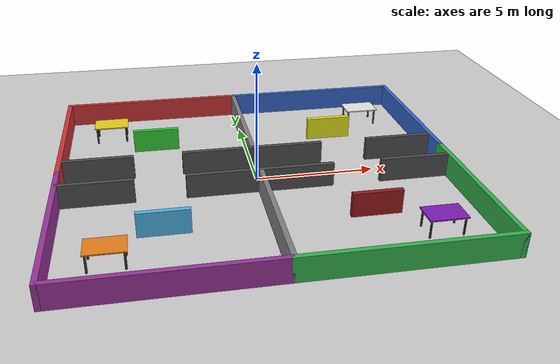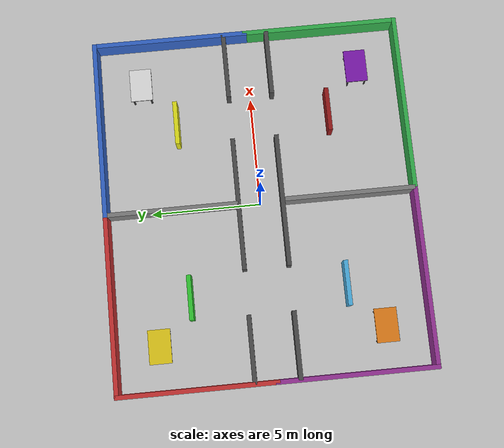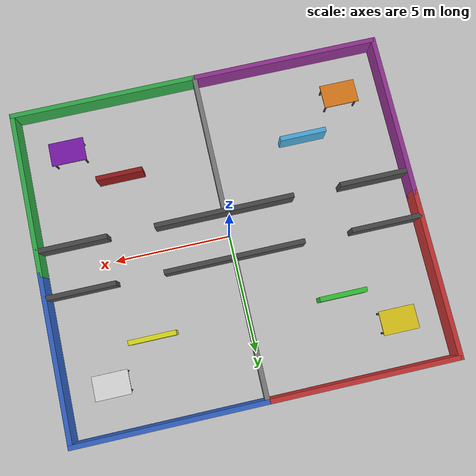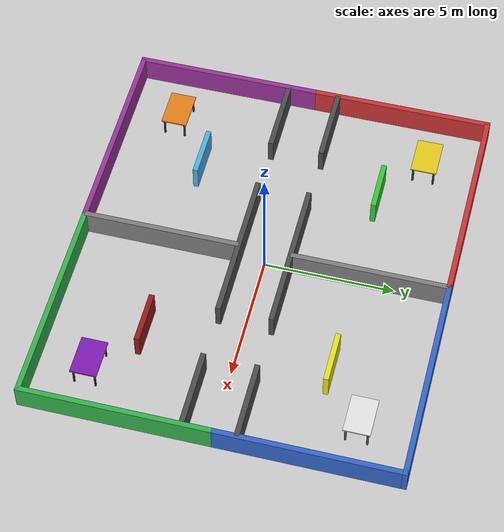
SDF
<?xml version='1.0' encoding='utf-8'?>
<sdf version='1.9'>
  <world name='hallway_colorful_rooms_world'>

    <physics name='1ms' type='ignored'>
      <max_step_size>0.001</max_step_size>
      <real_time_factor>1</real_time_factor>
      <real_time_update_rate>1000</real_time_update_rate>
    </physics>
    <plugin name='gz::sim::systems::Physics' filename='ignition-gazebo-physics-system'/>
    <plugin name='gz::sim::systems::UserCommands' filename='ignition-gazebo-user-commands-system'/>
    <plugin name='gz::sim::systems::SceneBroadcaster' filename='ignition-gazebo-scene-broadcaster-system'/>
    <plugin name='gz::sim::systems::Contact' filename='ignition-gazebo-contact-system'/>
    <gravity>0 0 -9.8</gravity>
    <magnetic_field>6e-06 2.3e-05 -4.2e-05</magnetic_field>
    <atmosphere type='adiabatic'/>

    <scene>
      <ambient>0.5 0.5 0.5 1</ambient>
      <background>0.8 0.8 0.8 1</background>
      <shadows>true</shadows>
    </scene>

    <light name='sun' type='directional'>
      <pose>0 0 10 0 0 0</pose>
      <cast_shadows>true</cast_shadows>
      <intensity>1</intensity>
      <direction>-0.5 0.1 -0.9</direction>
      <diffuse>0.9 0.9 0.9 1</diffuse>
      <specular>0.2 0.2 0.2 1</specular>
      <attenuation>
        <range>1000</range>
        <linear>0.01</linear>
        <constant>0.9</constant>
        <quadratic>0.001</quadratic>
      </attenuation>
    </light>

    <model name='ground_plane'>
      <static>true</static>
      <link name='link'>
        <collision name='collision'><geometry><plane><normal>0 0 1</normal><size>100 100</size></plane></geometry></collision>
        <visual name='visual'>
          <geometry><plane><normal>0 0 1</normal><size>100 100</size></plane></geometry>
          <material>
            <ambient>0.8 0.8 0.8 1</ambient>
            <diffuse>0.8 0.8 0.8 1</diffuse>
          </material>
        </visual>
      </link>
    </model>

    <model name='building_layout'>
      <static>true</static>
      <pose>0 0 0 0 0 0</pose>
      <link name='walls'>

        <collision name='wall_n_ext_c1'><pose>-4 7 0.5 0 0 0</pose><geometry><box><size>8 0.2 1</size></box></geometry></collision>
        <visual name='wall_n_ext_c1_vis'><pose>-4 7 0.5 0 0 0</pose><geometry><box><size>8 0.2 1</size></box></geometry><material><ambient>0.8 0.2 0.2 1</ambient><diffuse>0.8 0.2 0.2 1</diffuse></material></visual>

        <collision name='wall_n_ext_c2'><pose>4 7 0.5 0 0 0</pose><geometry><box><size>8.2 0.2 1</size></box></geometry></collision>
        <visual name='wall_n_ext_c2_vis'><pose>4 7 0.5 0 0 0</pose><geometry><box><size>8.2 0.2 1</size></box></geometry><material><ambient>0.2 0.4 0.8 1</ambient><diffuse>0.2 0.4 0.8 1</diffuse></material></visual>

        <collision name='wall_s_ext_c3'><pose>-4 -7 0.5 0 0 0</pose><geometry><box><size>8 0.2 1</size></box></geometry></collision>
        <visual name='wall_s_ext_c3_vis'><pose>-4 -7 0.5 0 0 0</pose><geometry><box><size>8 0.2 1</size></box></geometry><material><ambient>0.6 0.2 0.6 1</ambient><diffuse>0.6 0.2 0.6 1</diffuse></material></visual>

        <collision name='wall_s_ext_c4'><pose>4 -7 0.5 0 0 0</pose><geometry><box><size>8.2 0.2 1</size></box></geometry></collision>
        <visual name='wall_s_ext_c4_vis'><pose>4 -7 0.5 0 0 0</pose><geometry><box><size>8.2 0.2 1</size></box></geometry><material><ambient>0.2 0.7 0.3 1</ambient><diffuse>0.2 0.7 0.3 1</diffuse></material></visual>

        <collision name='wall_w_ext_top'><pose>-8 3.5 0.5 0 0 0</pose><geometry><box><size>0.2 7.2 1</size></box></geometry></collision>
        <visual name='wall_w_ext_top_vis'><pose>-8 3.5 0.5 0 0 0</pose><geometry><box><size>0.2 7.2 1</size></box></geometry><material><ambient>0.8 0.2 0.2 1</ambient><diffuse>0.8 0.2 0.2 1</diffuse></material></visual>

        <collision name='wall_w_ext_bot'><pose>-8 -3.5 0.5 0 0 0</pose><geometry><box><size>0.2 7.2 1</size></box></geometry></collision>
        <visual name='wall_w_ext_bot_vis'><pose>-8 -3.5 0.5 0 0 0</pose><geometry><box><size>0.2 7.2 1</size></box></geometry><material><ambient>0.6 0.2 0.6 1</ambient><diffuse>0.6 0.2 0.6 1</diffuse></material></visual>

        <collision name='wall_e_ext_top'><pose>8 3.5 0.5 0 0 0</pose><geometry><box><size>0.2 7.2 1</size></box></geometry></collision>
        <visual name='wall_e_ext_top_vis'><pose>8 3.5 0.5 0 0 0</pose><geometry><box><size>0.2 7.2 1</size></box></geometry><material><ambient>0.2 0.4 0.8 1</ambient><diffuse>0.2 0.4 0.8 1</diffuse></material></visual>

        <collision name='wall_e_ext_bot'><pose>8 -3.5 0.5 0 0 0</pose><geometry><box><size>0.2 7.2 1</size></box></geometry></collision>
        <visual name='wall_e_ext_bot_vis'><pose>8 -3.5 0.5 0 0 0</pose><geometry><box><size>0.2 7.2 1</size></box></geometry><material><ambient>0.2 0.7 0.3 1</ambient><diffuse>0.2 0.7 0.3 1</diffuse></material></visual>

        <collision name='wall_div_n'><pose>0 4 0.5 0 0 0</pose><geometry><box><size>0.2 6 1</size></box></geometry></collision>
        <visual name='wall_div_n_vis'><pose>0 4 0.5 0 0 0</pose><geometry><box><size>0.2 6 1</size></box></geometry><material><ambient>0.5 0.5 0.5 1</ambient><diffuse>0.5 0.5 0.5 1</diffuse></material></visual>

        <collision name='wall_div_s'><pose>0 -4 0.5 0 0 0</pose><geometry><box><size>0.2 6 1</size></box></geometry></collision>
        <visual name='wall_div_s_vis'><pose>0 -4 0.5 0 0 0</pose><geometry><box><size>0.2 6 1</size></box></geometry><material><ambient>0.5 0.5 0.5 1</ambient><diffuse>0.5 0.5 0.5 1</diffuse></material></visual>

        <collision name='hall_n1'><pose>-6.5 1 0.5 0 0 0</pose><geometry><box><size>3 0.2 1</size></box></geometry></collision>
        <visual name='hall_n1_vis'><pose>-6.5 1 0.5 0 0 0</pose><geometry><box><size>3 0.2 1</size></box></geometry><material><ambient>0.3 0.3 0.3 1</ambient></material></visual>

        <collision name='hall_n2'><pose>0 1 0.5 0 0 0</pose><geometry><box><size>6 0.2 1</size></box></geometry></collision>
        <visual name='hall_n2_vis'><pose>0 1 0.5 0 0 0</pose><geometry><box><size>6 0.2 1</size></box></geometry><material><ambient>0.3 0.3 0.3 1</ambient></material></visual>

        <collision name='hall_n3'><pose>6.5 1 0.5 0 0 0</pose><geometry><box><size>3 0.2 1</size></box></geometry></collision>
        <visual name='hall_n3_vis'><pose>6.5 1 0.5 0 0 0</pose><geometry><box><size>3 0.2 1</size></box></geometry><material><ambient>0.3 0.3 0.3 1</ambient></material></visual>

        <collision name='hall_s1'><pose>-6.5 -1 0.5 0 0 0</pose><geometry><box><size>3 0.2 1</size></box></geometry></collision>
        <visual name='hall_s1_vis'><pose>-6.5 -1 0.5 0 0 0</pose><geometry><box><size>3 0.2 1</size></box></geometry><material><ambient>0.3 0.3 0.3 1</ambient></material></visual>

        <collision name='hall_s2'><pose>0 -1 0.5 0 0 0</pose><geometry><box><size>6 0.2 1</size></box></geometry></collision>
        <visual name='hall_s2_vis'><pose>0 -1 0.5 0 0 0</pose><geometry><box><size>6 0.2 1</size></box></geometry><material><ambient>0.3 0.3 0.3 1</ambient></material></visual>

        <collision name='hall_s3'><pose>6.5 -1 0.5 0 0 0</pose><geometry><box><size>3 0.2 1</size></box></geometry></collision>
        <visual name='hall_s3_vis'><pose>6.5 -1 0.5 0 0 0</pose><geometry><box><size>3 0.2 1</size></box></geometry><material><ambient>0.3 0.3 0.3 1</ambient></material></visual>

        <collision name='obs_1'><pose>-4 3.5 0.5 0 0 0</pose><geometry><box><size>2 0.2 1</size></box></geometry></collision>
        <visual name='obs_1_vis'><pose>-4 3.5 0.5 0 0 0</pose><geometry><box><size>2 0.2 1</size></box></geometry><material><ambient>0.2 0.8 0.2 1</ambient></material></visual>

        <collision name='obs_2'><pose>4 3.5 0.5 0 0 0</pose><geometry><box><size>2 0.2 1</size></box></geometry></collision>
        <visual name='obs_2_vis'><pose>4 3.5 0.5 0 0 0</pose><geometry><box><size>2 0.2 1</size></box></geometry><material><ambient>0.9 0.9 0.1 1</ambient></material></visual>

        <collision name='obs_3'><pose>-4 -3.5 0.5 0 0 0</pose><geometry><box><size>2 0.2 1</size></box></geometry></collision>
        <visual name='obs_3_vis'><pose>-4 -3.5 0.5 0 0 0</pose><geometry><box><size>2 0.2 1</size></box></geometry><material><ambient>0.3 0.7 0.9 1</ambient></material></visual>

        <collision name='obs_4'><pose>4 -3.5 0.5 0 0 0</pose><geometry><box><size>2 0.2 1</size></box></geometry></collision>
        <visual name='obs_4_vis'><pose>4 -3.5 0.5 0 0 0</pose><geometry><box><size>2 0.2 1</size></box></geometry><material><ambient>0.6 0.1 0.1 1</ambient></material></visual>

      </link>
    </model>

    <model name='table_1'>
      <static>true</static><pose>-6 5 0 0 0 0</pose>
      <link name='table_parts'>
        <collision name='top'><pose>0 0 0.75 0 0 0</pose><geometry><box><size>1.5 1.0 0.05</size></box></geometry></collision>
        <visual name='top'><pose>0 0 0.75 0 0 0</pose><geometry><box><size>1.5 1.0 0.05</size></box></geometry><material><ambient>0.9 0.8 0.1 1</ambient></material></visual>
        <visual name='l1'><pose>0.65 0.4 0.375 0 0 0</pose><geometry><cylinder><radius>0.04</radius><length>0.75</length></cylinder></geometry><material><ambient>0.2 0.2 0.2 1</ambient></material></visual>
        <visual name='l2'><pose>-0.65 0.4 0.375 0 0 0</pose><geometry><cylinder><radius>0.04</radius><length>0.75</length></cylinder></geometry><material><ambient>0.2 0.2 0.2 1</ambient></material></visual>
        <visual name='l3'><pose>0.65 -0.4 0.375 0 0 0</pose><geometry><cylinder><radius>0.04</radius><length>0.75</length></cylinder></geometry><material><ambient>0.2 0.2 0.2 1</ambient></material></visual>
        <visual name='l4'><pose>-0.65 -0.4 0.375 0 0 0</pose><geometry><cylinder><radius>0.04</radius><length>0.75</length></cylinder></geometry><material><ambient>0.2 0.2 0.2 1</ambient></material></visual>
      </link>
    </model>

    <model name='table_2'>
      <static>true</static><pose>6 5 0 0 0 0</pose>
      <link name='table_parts'>
        <collision name='top'><pose>0 0 0.75 0 0 0</pose><geometry><box><size>1.5 1.0 0.05</size></box></geometry></collision>
        <visual name='top'><pose>0 0 0.75 0 0 0</pose><geometry><box><size>1.5 1.0 0.05</size></box></geometry><material><ambient>0.9 0.9 0.9 1</ambient></material></visual>
        <visual name='l1'><pose>0.65 0.4 0.375 0 0 0</pose><geometry><cylinder><radius>0.04</radius><length>0.75</length></cylinder></geometry><material><ambient>0.3 0.3 0.3 1</ambient></material></visual>
        <visual name='l2'><pose>-0.65 0.4 0.375 0 0 0</pose><geometry><cylinder><radius>0.04</radius><length>0.75</length></cylinder></geometry><material><ambient>0.3 0.3 0.3 1</ambient></material></visual>
        <visual name='l3'><pose>0.65 -0.4 0.375 0 0 0</pose><geometry><cylinder><radius>0.04</radius><length>0.75</length></cylinder></geometry><material><ambient>0.3 0.3 0.3 1</ambient></material></visual>
        <visual name='l4'><pose>-0.65 -0.4 0.375 0 0 0</pose><geometry><cylinder><radius>0.04</radius><length>0.75</length></cylinder></geometry><material><ambient>0.3 0.3 0.3 1</ambient></material></visual>
      </link>
    </model>

    <model name='table_3'>
      <static>true</static><pose>-6 -5 0 0 0 0</pose>
      <link name='table_parts'>
        <collision name='top'><pose>0 0 0.75 0 0 0</pose><geometry><box><size>1.5 1.0 0.05</size></box></geometry></collision>
        <visual name='top'><pose>0 0 0.75 0 0 0</pose><geometry><box><size>1.5 1.0 0.05</size></box></geometry><material><ambient>0.9 0.5 0.1 1</ambient></material></visual>
        <visual name='l1'><pose>0.65 0.4 0.375 0 0 0</pose><geometry><cylinder><radius>0.04</radius><length>0.75</length></cylinder></geometry><material><ambient>0.2 0.2 0.2 1</ambient></material></visual>
        <visual name='l2'><pose>-0.65 0.4 0.375 0 0 0</pose><geometry><cylinder><radius>0.04</radius><length>0.75</length></cylinder></geometry><material><ambient>0.2 0.2 0.2 1</ambient></material></visual>
        <visual name='l3'><pose>0.65 -0.4 0.375 0 0 0</pose><geometry><cylinder><radius>0.04</radius><length>0.75</length></cylinder></geometry><material><ambient>0.2 0.2 0.2 1</ambient></material></visual>
        <visual name='l4'><pose>-0.65 -0.4 0.375 0 0 0</pose><geometry><cylinder><radius>0.04</radius><length>0.75</length></cylinder></geometry><material><ambient>0.2 0.2 0.2 1</ambient></material></visual>
      </link>
    </model>

    <model name='table_4'>
      <static>true</static><pose>6 -5 0 0 0 0</pose>
      <link name='table_parts'>
        <collision name='top'><pose>0 0 0.75 0 0 0</pose><geometry><box><size>1.5 1.0 0.05</size></box></geometry></collision>
        <visual name='top'><pose>0 0 0.75 0 0 0</pose><geometry><box><size>1.5 1.0 0.05</size></box></geometry><material><ambient>0.5 0.1 0.7 1</ambient></material></visual>
        <visual name='l1'><pose>0.65 0.4 0.375 0 0 0</pose><geometry><cylinder><radius>0.04</radius><length>0.75</length></cylinder></geometry><material><ambient>0.1 0.1 0.1 1</ambient></material></visual>
        <visual name='l2'><pose>-0.65 0.4 0.375 0 0 0</pose><geometry><cylinder><radius>0.04</radius><length>0.75</length></cylinder></geometry><material><ambient>0.1 0.1 0.1 1</ambient></material></visual>
        <visual name='l3'><pose>0.65 -0.4 0.375 0 0 0</pose><geometry><cylinder><radius>0.04</radius><length>0.75</length></cylinder></geometry><material><ambient>0.1 0.1 0.1 1</ambient></material></visual>
        <visual name='l4'><pose>-0.65 -0.4 0.375 0 0 0</pose><geometry><cylinder><radius>0.04</radius><length>0.75</length></cylinder></geometry><material><ambient>0.1 0.1 0.1 1</ambient></material></visual>
      </link>
    </model>

  </world>
</sdf>
